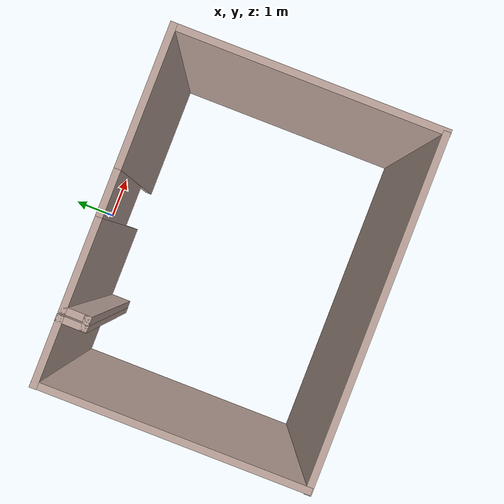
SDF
<?xml version='1.0'?>
<sdf version='1.7'>
  <model name='test_world'>
    <link name='Wall_66'>
      <pose>-2.87309 -0.66715 0 0 -0 0.001025</pose>
      <self_collide>0</self_collide>
      <enable_wind>0</enable_wind>
      <kinematic>0</kinematic>
      <visual name='Wall_66_Visual'>
        <pose>0 0 2.5 0 -0 0</pose>
        <geometry>
          <box>
            <size>1.51411 0.15 5</size>
          </box>
        </geometry>
        <material>
          <script>
            <uri>file://media/materials/scripts/gazebo.material</uri>
            <name>Gazebo/Grey</name>
          </script>
          <ambient>0.760784 0.662745 0.627451 1</ambient>
          <shader type='pixel'/>
        </material>
        <meta>
          <layer>0</layer>
        </meta>
        <transparency>0</transparency>
        <cast_shadows>1</cast_shadows>
      </visual>
      <collision name='Wall_66_Collision'>
        <laser_retro>0</laser_retro>
        <max_contacts>10</max_contacts>
        <pose>0 0 2.5 0 -0 0</pose>
        <geometry>
          <box>
            <size>1.51411 0.15 5</size>
          </box>
        </geometry>
        <surface>
          <friction>
            <ode>
              <mu>1</mu>
              <mu2>1</mu2>
              <fdir1>0 0 0</fdir1>
              <slip1>0</slip1>
              <slip2>0</slip2>
            </ode>
            <torsional>
              <coefficient>1</coefficient>
              <patch_radius>0</patch_radius>
              <surface_radius>0</surface_radius>
              <use_patch_radius>1</use_patch_radius>
              <ode>
                <slip>0</slip>
              </ode>
            </torsional>
          </friction>
          <bounce>
            <restitution_coefficient>0</restitution_coefficient>
            <threshold>1e+06</threshold>
          </bounce>
          <contact>
            <collide_without_contact>0</collide_without_contact>
            <collide_without_contact_bitmask>1</collide_without_contact_bitmask>
            <collide_bitmask>1</collide_bitmask>
            <ode>
              <soft_cfm>0</soft_cfm>
              <soft_erp>0.2</soft_erp>
              <kp>1e+13</kp>
              <kd>1</kd>
              <max_vel>0.01</max_vel>
              <min_depth>0</min_depth>
            </ode>
            <bullet>
              <split_impulse>1</split_impulse>
              <split_impulse_penetration_threshold>-0.01</split_impulse_penetration_threshold>
              <soft_cfm>0</soft_cfm>
              <soft_erp>0.2</soft_erp>
              <kp>1e+13</kp>
              <kd>1</kd>
            </bullet>
          </contact>
        </surface>
      </collision>
    </link>
    <link name='Wall_67'>
      <pose>-2.19312 -0.918014 0 0 0 -1.57907</pose>
      <self_collide>0</self_collide>
      <enable_wind>0</enable_wind>
      <kinematic>0</kinematic>
      <inertial>
        <inertia>
          <ixx>0</ixx>
          <ixy>0</ixy>
          <ixz>0</ixz>
          <iyy>0</iyy>
          <iyz>0</iyz>
          <izz>0</izz>
        </inertia>
        <mass>0</mass>
        <pose>0 0 0 0 -0 0</pose>
      </inertial>
      <visual name='Wall_67_Visual'>
        <pose>0 0 2.5 0 -0 0</pose>
        <geometry>
          <box>
            <size>0.663509 0.15 5</size>
          </box>
        </geometry>
        <material>
          <script>
            <uri>file://media/materials/scripts/gazebo.material</uri>
            <name>Gazebo/Grey</name>
          </script>
          <ambient>0.760784 0.662745 0.627451 1</ambient>
          <shader type='pixel'/>
        </material>
        <meta>
          <layer>0</layer>
        </meta>
        <transparency>0</transparency>
        <cast_shadows>1</cast_shadows>
      </visual>
      <collision name='Wall_67_Collision'>
        <laser_retro>0</laser_retro>
        <max_contacts>10</max_contacts>
        <pose>0 0 2.5 0 -0 0</pose>
        <geometry>
          <box>
            <size>0.663509 0.15 5</size>
          </box>
        </geometry>
        <surface>
          <friction>
            <ode>
              <mu>1</mu>
              <mu2>1</mu2>
              <fdir1>0 0 0</fdir1>
              <slip1>0</slip1>
              <slip2>0</slip2>
            </ode>
            <torsional>
              <coefficient>1</coefficient>
              <patch_radius>0</patch_radius>
              <surface_radius>0</surface_radius>
              <use_patch_radius>1</use_patch_radius>
              <ode>
                <slip>0</slip>
              </ode>
            </torsional>
          </friction>
          <bounce>
            <restitution_coefficient>0</restitution_coefficient>
            <threshold>1e+06</threshold>
          </bounce>
          <contact>
            <collide_without_contact>0</collide_without_contact>
            <collide_without_contact_bitmask>1</collide_without_contact_bitmask>
            <collide_bitmask>1</collide_bitmask>
            <ode>
              <soft_cfm>0</soft_cfm>
              <soft_erp>0.2</soft_erp>
              <kp>1e+13</kp>
              <kd>1</kd>
              <max_vel>0.01</max_vel>
              <min_depth>0</min_depth>
            </ode>
            <bullet>
              <split_impulse>1</split_impulse>
              <split_impulse_penetration_threshold>-0.01</split_impulse_penetration_threshold>
              <soft_cfm>0</soft_cfm>
              <soft_erp>0.2</soft_erp>
              <kp>1e+13</kp>
              <kd>1</kd>
            </bullet>
          </contact>
        </surface>
      </collision>
    </link>
    <link name='Wall_68'>
      <pose>-2.10742 -1.17021 0 0 -0 0.005892</pose>
      <self_collide>0</self_collide>
      <enable_wind>0</enable_wind>
      <kinematic>0</kinematic>
      <visual name='Wall_68_Visual'>
        <pose>0 0 2.5 0 -0 0</pose>
        <geometry>
          <box>
            <size>0.33 0.15 5</size>
          </box>
        </geometry>
        <material>
          <script>
            <uri>file://media/materials/scripts/gazebo.material</uri>
            <name>Gazebo/Grey</name>
          </script>
          <ambient>0.760784 0.662745 0.627451 1</ambient>
          <shader type='pixel'/>
        </material>
        <meta>
          <layer>0</layer>
        </meta>
        <transparency>0</transparency>
        <cast_shadows>1</cast_shadows>
      </visual>
      <collision name='Wall_68_Collision'>
        <laser_retro>0</laser_retro>
        <max_contacts>10</max_contacts>
        <pose>0 0 2.5 0 -0 0</pose>
        <geometry>
          <box>
            <size>0.33 0.15 5</size>
          </box>
        </geometry>
        <surface>
          <friction>
            <ode>
              <mu>1</mu>
              <mu2>1</mu2>
              <fdir1>0 0 0</fdir1>
              <slip1>0</slip1>
              <slip2>0</slip2>
            </ode>
            <torsional>
              <coefficient>1</coefficient>
              <patch_radius>0</patch_radius>
              <surface_radius>0</surface_radius>
              <use_patch_radius>1</use_patch_radius>
              <ode>
                <slip>0</slip>
              </ode>
            </torsional>
          </friction>
          <bounce>
            <restitution_coefficient>0</restitution_coefficient>
            <threshold>1e+06</threshold>
          </bounce>
          <contact>
            <collide_without_contact>0</collide_without_contact>
            <collide_without_contact_bitmask>1</collide_without_contact_bitmask>
            <collide_bitmask>1</collide_bitmask>
            <ode>
              <soft_cfm>0</soft_cfm>
              <soft_erp>0.2</soft_erp>
              <kp>1e+13</kp>
              <kd>1</kd>
              <max_vel>0.01</max_vel>
              <min_depth>0</min_depth>
            </ode>
            <bullet>
              <split_impulse>1</split_impulse>
              <split_impulse_penetration_threshold>-0.01</split_impulse_penetration_threshold>
              <soft_cfm>0</soft_cfm>
              <soft_erp>0.2</soft_erp>
              <kp>1e+13</kp>
              <kd>1</kd>
            </bullet>
          </contact>
        </surface>
      </collision>
    </link>
    <link name='Wall_70'>
      <pose>0.913146 -0.665365 0 0 -0 0</pose>
      <self_collide>0</self_collide>
      <enable_wind>0</enable_wind>
      <kinematic>0</kinematic>
      <visual name='Wall_70_Visual_0'>
        <pose>-2.00701 0 2.5 0 -0 0</pose>
        <geometry>
          <box>
            <size>1.98597 0.15 5</size>
          </box>
        </geometry>
        <material>
          <script>
            <uri>file://media/materials/scripts/gazebo.material</uri>
            <name>Gazebo/Grey</name>
          </script>
          <ambient>0.760784 0.662745 0.627451 1</ambient>
          <shader type='pixel'/>
        </material>
        <meta>
          <layer>0</layer>
        </meta>
        <transparency>0</transparency>
        <cast_shadows>1</cast_shadows>
      </visual>
      <visual name='Wall_70_Visual_1'>
        <pose>1.48799 0 2.5 0 -0 0</pose>
        <geometry>
          <box>
            <size>3.02403 0.15 5</size>
          </box>
        </geometry>
        <material>
          <script>
            <uri>file://media/materials/scripts/gazebo.material</uri>
            <name>Gazebo/Grey</name>
          </script>
          <ambient>0.760784 0.662745 0.627451 1</ambient>
          <shader type='pixel'/>
        </material>
        <meta>
          <layer>0</layer>
        </meta>
        <transparency>0</transparency>
        <cast_shadows>1</cast_shadows>
      </visual>
      <visual name='Wall_70_Visual_2'>
        <pose>-0.519028 0 3.5 0 -0 0</pose>
        <geometry>
          <box>
            <size>0.99 0.15 3</size>
          </box>
        </geometry>
        <material>
          <script>
            <uri>file://media/materials/scripts/gazebo.material</uri>
            <name>Gazebo/Grey</name>
          </script>
          <ambient>0.760784 0.662745 0.627451 1</ambient>
          <shader type='pixel'/>
        </material>
        <meta>
          <layer>0</layer>
        </meta>
        <transparency>0</transparency>
        <cast_shadows>1</cast_shadows>
      </visual>
      <collision name='Wall_70_Collision_0'>
        <laser_retro>0</laser_retro>
        <max_contacts>10</max_contacts>
        <pose>-2.00701 0 2.5 0 -0 0</pose>
        <geometry>
          <box>
            <size>1.98597 0.15 5</size>
          </box>
        </geometry>
        <surface>
          <friction>
            <ode>
              <mu>1</mu>
              <mu2>1</mu2>
              <fdir1>0 0 0</fdir1>
              <slip1>0</slip1>
              <slip2>0</slip2>
            </ode>
            <torsional>
              <coefficient>1</coefficient>
              <patch_radius>0</patch_radius>
              <surface_radius>0</surface_radius>
              <use_patch_radius>1</use_patch_radius>
              <ode>
                <slip>0</slip>
              </ode>
            </torsional>
          </friction>
          <bounce>
            <restitution_coefficient>0</restitution_coefficient>
            <threshold>1e+06</threshold>
          </bounce>
          <contact>
            <collide_without_contact>0</collide_without_contact>
            <collide_without_contact_bitmask>1</collide_without_contact_bitmask>
            <collide_bitmask>1</collide_bitmask>
            <ode>
              <soft_cfm>0</soft_cfm>
              <soft_erp>0.2</soft_erp>
              <kp>1e+13</kp>
              <kd>1</kd>
              <max_vel>0.01</max_vel>
              <min_depth>0</min_depth>
            </ode>
            <bullet>
              <split_impulse>1</split_impulse>
              <split_impulse_penetration_threshold>-0.01</split_impulse_penetration_threshold>
              <soft_cfm>0</soft_cfm>
              <soft_erp>0.2</soft_erp>
              <kp>1e+13</kp>
              <kd>1</kd>
            </bullet>
          </contact>
        </surface>
      </collision>
      <collision name='Wall_70_Collision_1'>
        <laser_retro>0</laser_retro>
        <max_contacts>10</max_contacts>
        <pose>1.48799 0 2.5 0 -0 0</pose>
        <geometry>
          <box>
            <size>3.02403 0.15 5</size>
          </box>
        </geometry>
        <surface>
          <friction>
            <ode>
              <mu>1</mu>
              <mu2>1</mu2>
              <fdir1>0 0 0</fdir1>
              <slip1>0</slip1>
              <slip2>0</slip2>
            </ode>
            <torsional>
              <coefficient>1</coefficient>
              <patch_radius>0</patch_radius>
              <surface_radius>0</surface_radius>
              <use_patch_radius>1</use_patch_radius>
              <ode>
                <slip>0</slip>
              </ode>
            </torsional>
          </friction>
          <bounce>
            <restitution_coefficient>0</restitution_coefficient>
            <threshold>1e+06</threshold>
          </bounce>
          <contact>
            <collide_without_contact>0</collide_without_contact>
            <collide_without_contact_bitmask>1</collide_without_contact_bitmask>
            <collide_bitmask>1</collide_bitmask>
            <ode>
              <soft_cfm>0</soft_cfm>
              <soft_erp>0.2</soft_erp>
              <kp>1e+13</kp>
              <kd>1</kd>
              <max_vel>0.01</max_vel>
              <min_depth>0</min_depth>
            </ode>
            <bullet>
              <split_impulse>1</split_impulse>
              <split_impulse_penetration_threshold>-0.01</split_impulse_penetration_threshold>
              <soft_cfm>0</soft_cfm>
              <soft_erp>0.2</soft_erp>
              <kp>1e+13</kp>
              <kd>1</kd>
            </bullet>
          </contact>
        </surface>
      </collision>
      <collision name='Wall_70_Collision_2'>
        <laser_retro>0</laser_retro>
        <max_contacts>10</max_contacts>
        <pose>-0.519028 0 3.5 0 -0 0</pose>
        <geometry>
          <box>
            <size>0.99 0.15 3</size>
          </box>
        </geometry>
        <surface>
          <friction>
            <ode>
              <mu>1</mu>
              <mu2>1</mu2>
              <fdir1>0 0 0</fdir1>
              <slip1>0</slip1>
              <slip2>0</slip2>
            </ode>
            <torsional>
              <coefficient>1</coefficient>
              <patch_radius>0</patch_radius>
              <surface_radius>0</surface_radius>
              <use_patch_radius>1</use_patch_radius>
              <ode>
                <slip>0</slip>
              </ode>
            </torsional>
          </friction>
          <bounce>
            <restitution_coefficient>0</restitution_coefficient>
            <threshold>1e+06</threshold>
          </bounce>
          <contact>
            <collide_without_contact>0</collide_without_contact>
            <collide_without_contact_bitmask>1</collide_without_contact_bitmask>
            <collide_bitmask>1</collide_bitmask>
            <ode>
              <soft_cfm>0</soft_cfm>
              <soft_erp>0.2</soft_erp>
              <kp>1e+13</kp>
              <kd>1</kd>
              <max_vel>0.01</max_vel>
              <min_depth>0</min_depth>
            </ode>
            <bullet>
              <split_impulse>1</split_impulse>
              <split_impulse_penetration_threshold>-0.01</split_impulse_penetration_threshold>
              <soft_cfm>0</soft_cfm>
              <soft_erp>0.2</soft_erp>
              <kp>1e+13</kp>
              <kd>1</kd>
            </bullet>
          </contact>
        </surface>
      </collision>
    </link>
    <link name='Wall_73'>
      <pose>-3.54919 -3.48969 0 0 -0 1.5708</pose>
      <self_collide>0</self_collide>
      <enable_wind>0</enable_wind>
      <kinematic>0</kinematic>
      <inertial>
        <inertia>
          <ixx>0</ixx>
          <ixy>0</ixy>
          <ixz>0</ixz>
          <iyy>0</iyy>
          <iyz>0</iyz>
          <izz>0</izz>
        </inertia>
        <mass>0</mass>
        <pose>0 0 0 0 -0 0</pose>
      </inertial>
      <visual name='Wall_73_Visual'>
        <pose>0 0 2.5 0 -0 0</pose>
        <geometry>
          <box>
            <size>5.797 0.15 5</size>
          </box>
        </geometry>
        <material>
          <script>
            <uri>file://media/materials/scripts/gazebo.material</uri>
            <name>Gazebo/Grey</name>
          </script>
          <ambient>0.760784 0.662745 0.627451 1</ambient>
          <shader type='pixel'/>
        </material>
        <meta>
          <layer>0</layer>
        </meta>
        <transparency>0</transparency>
        <cast_shadows>1</cast_shadows>
      </visual>
      <collision name='Wall_73_Collision'>
        <laser_retro>0</laser_retro>
        <max_contacts>10</max_contacts>
        <pose>0 0 2.5 0 -0 0</pose>
        <geometry>
          <box>
            <size>5.797 0.15 5</size>
          </box>
        </geometry>
        <surface>
          <friction>
            <ode>
              <mu>1</mu>
              <mu2>1</mu2>
              <fdir1>0 0 0</fdir1>
              <slip1>0</slip1>
              <slip2>0</slip2>
            </ode>
            <torsional>
              <coefficient>1</coefficient>
              <patch_radius>0</patch_radius>
              <surface_radius>0</surface_radius>
              <use_patch_radius>1</use_patch_radius>
              <ode>
                <slip>0</slip>
              </ode>
            </torsional>
          </friction>
          <bounce>
            <restitution_coefficient>0</restitution_coefficient>
            <threshold>1e+06</threshold>
          </bounce>
          <contact>
            <collide_without_contact>0</collide_without_contact>
            <collide_without_contact_bitmask>1</collide_without_contact_bitmask>
            <collide_bitmask>1</collide_bitmask>
            <ode>
              <soft_cfm>0</soft_cfm>
              <soft_erp>0.2</soft_erp>
              <kp>1e+13</kp>
              <kd>1</kd>
              <max_vel>0.01</max_vel>
              <min_depth>0</min_depth>
            </ode>
            <bullet>
              <split_impulse>1</split_impulse>
              <split_impulse_penetration_threshold>-0.01</split_impulse_penetration_threshold>
              <soft_cfm>0</soft_cfm>
              <soft_erp>0.2</soft_erp>
              <kp>1e+13</kp>
              <kd>1</kd>
            </bullet>
          </contact>
        </surface>
      </collision>
    </link>
    <link name='Wall_73_clone'>
      <pose>0.108327 -6.32382 0 0 -0 0.002113</pose>
      <self_collide>0</self_collide>
      <enable_wind>0</enable_wind>
      <kinematic>0</kinematic>
      <inertial>
        <inertia>
          <ixx>0</ixx>
          <ixy>0</ixy>
          <ixz>0</ixz>
          <iyy>0</iyy>
          <iyz>0</iyz>
          <izz>0</izz>
        </inertia>
        <mass>0</mass>
        <pose>0 0 0 0 -0 0</pose>
      </inertial>
      <visual name='Wall_73_Visual'>
        <pose>0 0 2.5 0 -0 0</pose>
        <geometry>
          <box>
            <size>7.4863 0.15 5</size>
          </box>
        </geometry>
        <material>
          <script>
            <uri>file://media/materials/scripts/gazebo.material</uri>
            <name>Gazebo/Grey</name>
          </script>
          <ambient>0.760784 0.662745 0.627451 1</ambient>
          <shader type='pixel'/>
        </material>
        <meta>
          <layer>0</layer>
        </meta>
        <transparency>0</transparency>
        <cast_shadows>1</cast_shadows>
      </visual>
      <collision name='Wall_73_Collision'>
        <laser_retro>0</laser_retro>
        <max_contacts>10</max_contacts>
        <pose>0 0 2.5 0 -0 0</pose>
        <geometry>
          <box>
            <size>7.4863 0.15 5</size>
          </box>
        </geometry>
        <surface>
          <friction>
            <ode>
              <mu>1</mu>
              <mu2>1</mu2>
              <fdir1>0 0 0</fdir1>
              <slip1>0</slip1>
              <slip2>0</slip2>
            </ode>
            <torsional>
              <coefficient>1</coefficient>
              <patch_radius>0</patch_radius>
              <surface_radius>0</surface_radius>
              <use_patch_radius>1</use_patch_radius>
              <ode>
                <slip>0</slip>
              </ode>
            </torsional>
          </friction>
          <bounce>
            <restitution_coefficient>0</restitution_coefficient>
            <threshold>1e+06</threshold>
          </bounce>
          <contact>
            <collide_without_contact>0</collide_without_contact>
            <collide_without_contact_bitmask>1</collide_without_contact_bitmask>
            <collide_bitmask>1</collide_bitmask>
            <ode>
              <soft_cfm>0</soft_cfm>
              <soft_erp>0.2</soft_erp>
              <kp>1e+13</kp>
              <kd>1</kd>
              <max_vel>0.01</max_vel>
              <min_depth>0</min_depth>
            </ode>
            <bullet>
              <split_impulse>1</split_impulse>
              <split_impulse_penetration_threshold>-0.01</split_impulse_penetration_threshold>
              <soft_cfm>0</soft_cfm>
              <soft_erp>0.2</soft_erp>
              <kp>1e+13</kp>
              <kd>1</kd>
            </bullet>
          </contact>
        </surface>
      </collision>
    </link>
    <link name='Wall_79'>
      <pose>3.83738 -3.49294 0 0 -0 1.5708</pose>
      <self_collide>0</self_collide>
      <enable_wind>0</enable_wind>
      <kinematic>0</kinematic>
      <inertial>
        <inertia>
          <ixx>0</ixx>
          <ixy>0</ixy>
          <ixz>0</ixz>
          <iyy>0</iyy>
          <iyz>0</iyz>
          <izz>0</izz>
        </inertia>
        <mass>0</mass>
        <pose>0 0 0 0 -0 0</pose>
      </inertial>
      <visual name='Wall_79_Visual'>
        <pose>0 0 2.5 0 -0 0</pose>
        <geometry>
          <box>
            <size>5.80575 0.15 5</size>
          </box>
        </geometry>
        <material>
          <script>
            <uri>file://media/materials/scripts/gazebo.material</uri>
            <name>Gazebo/Grey</name>
          </script>
          <ambient>0.760784 0.662745 0.627451 1</ambient>
          <shader type='pixel'/>
        </material>
        <meta>
          <layer>0</layer>
        </meta>
        <transparency>0</transparency>
        <cast_shadows>1</cast_shadows>
      </visual>
      <collision name='Wall_79_Collision'>
        <laser_retro>0</laser_retro>
        <max_contacts>10</max_contacts>
        <pose>0 0 2.5 0 -0 0</pose>
        <geometry>
          <box>
            <size>5.80575 0.15 5</size>
          </box>
        </geometry>
        <surface>
          <friction>
            <ode>
              <mu>1</mu>
              <mu2>1</mu2>
              <fdir1>0 0 0</fdir1>
              <slip1>0</slip1>
              <slip2>0</slip2>
            </ode>
            <torsional>
              <coefficient>1</coefficient>
              <patch_radius>0</patch_radius>
              <surface_radius>0</surface_radius>
              <use_patch_radius>1</use_patch_radius>
              <ode>
                <slip>0</slip>
              </ode>
            </torsional>
          </friction>
          <bounce>
            <restitution_coefficient>0</restitution_coefficient>
            <threshold>1e+06</threshold>
          </bounce>
          <contact>
            <collide_without_contact>0</collide_without_contact>
            <collide_without_contact_bitmask>1</collide_without_contact_bitmask>
            <collide_bitmask>1</collide_bitmask>
            <ode>
              <soft_cfm>0</soft_cfm>
              <soft_erp>0.2</soft_erp>
              <kp>1e+13</kp>
              <kd>1</kd>
              <max_vel>0.01</max_vel>
              <min_depth>0</min_depth>
            </ode>
            <bullet>
              <split_impulse>1</split_impulse>
              <split_impulse_penetration_threshold>-0.01</split_impulse_penetration_threshold>
              <soft_cfm>0</soft_cfm>
              <soft_erp>0.2</soft_erp>
              <kp>1e+13</kp>
              <kd>1</kd>
            </bullet>
          </contact>
        </surface>
      </collision>
    </link>
    <link name='Wall_86'>
      <pose>-2.01364 -0.9181 0 0 -0 1.56375</pose>
      <self_collide>0</self_collide>
      <enable_wind>0</enable_wind>
      <kinematic>0</kinematic>
      <inertial>
        <inertia>
          <ixx>0</ixx>
          <ixy>0</ixy>
          <ixz>0</ixz>
          <iyy>0</iyy>
          <iyz>0</iyz>
          <izz>0</izz>
        </inertia>
        <mass>0</mass>
        <pose>0 0 0 0 -0 0</pose>
      </inertial>
      <visual name='Wall_86_Visual'>
        <pose>0 0 2.5 0 -0 0</pose>
        <geometry>
          <box>
            <size>0.644981 0.15 5</size>
          </box>
        </geometry>
        <material>
          <script>
            <uri>file://media/materials/scripts/gazebo.material</uri>
            <name>Gazebo/Grey</name>
          </script>
          <ambient>0.760784 0.662745 0.627451 1</ambient>
          <shader type='pixel'/>
        </material>
        <meta>
          <layer>0</layer>
        </meta>
        <transparency>0</transparency>
        <cast_shadows>1</cast_shadows>
      </visual>
      <collision name='Wall_86_Collision'>
        <laser_retro>0</laser_retro>
        <max_contacts>10</max_contacts>
        <pose>0 0 2.5 0 -0 0</pose>
        <geometry>
          <box>
            <size>0.644981 0.15 5</size>
          </box>
        </geometry>
        <surface>
          <friction>
            <ode>
              <mu>1</mu>
              <mu2>1</mu2>
              <fdir1>0 0 0</fdir1>
              <slip1>0</slip1>
              <slip2>0</slip2>
            </ode>
            <torsional>
              <coefficient>1</coefficient>
              <patch_radius>0</patch_radius>
              <surface_radius>0</surface_radius>
              <use_patch_radius>1</use_patch_radius>
              <ode>
                <slip>0</slip>
              </ode>
            </torsional>
          </friction>
          <bounce>
            <restitution_coefficient>0</restitution_coefficient>
            <threshold>1e+06</threshold>
          </bounce>
          <contact>
            <collide_without_contact>0</collide_without_contact>
            <collide_without_contact_bitmask>1</collide_without_contact_bitmask>
            <collide_bitmask>1</collide_bitmask>
            <ode>
              <soft_cfm>0</soft_cfm>
              <soft_erp>0.2</soft_erp>
              <kp>1e+13</kp>
              <kd>1</kd>
              <max_vel>0.01</max_vel>
              <min_depth>0</min_depth>
            </ode>
            <bullet>
              <split_impulse>1</split_impulse>
              <split_impulse_penetration_threshold>-0.01</split_impulse_penetration_threshold>
              <soft_cfm>0</soft_cfm>
              <soft_erp>0.2</soft_erp>
              <kp>1e+13</kp>
              <kd>1</kd>
            </bullet>
          </contact>
        </surface>
      </collision>
    </link>
    <static>1</static>
    <allow_auto_disable>1</allow_auto_disable>
  </model>
</sdf>
